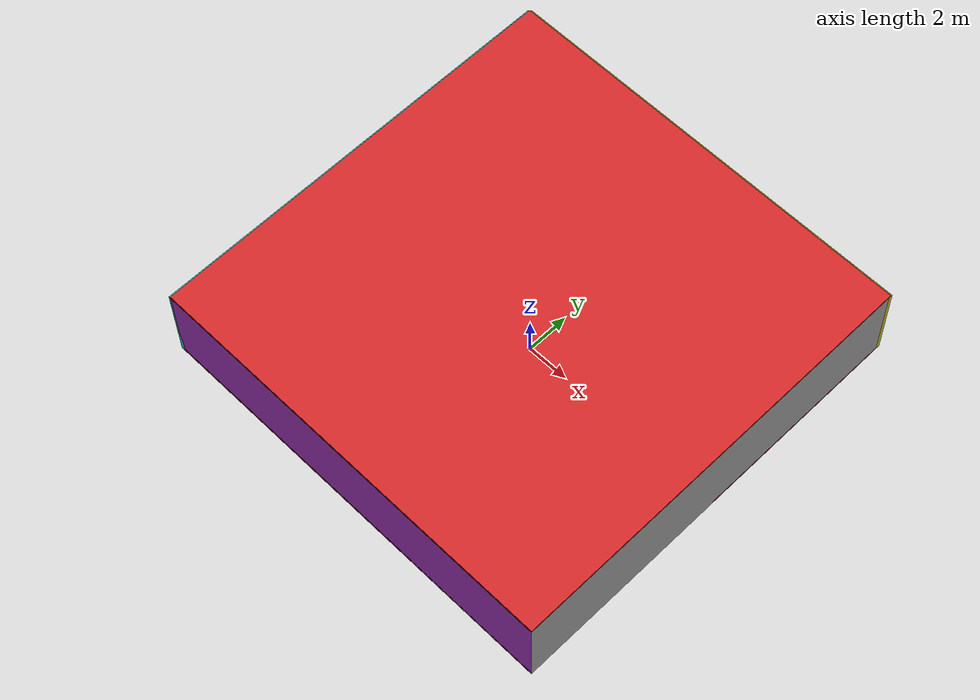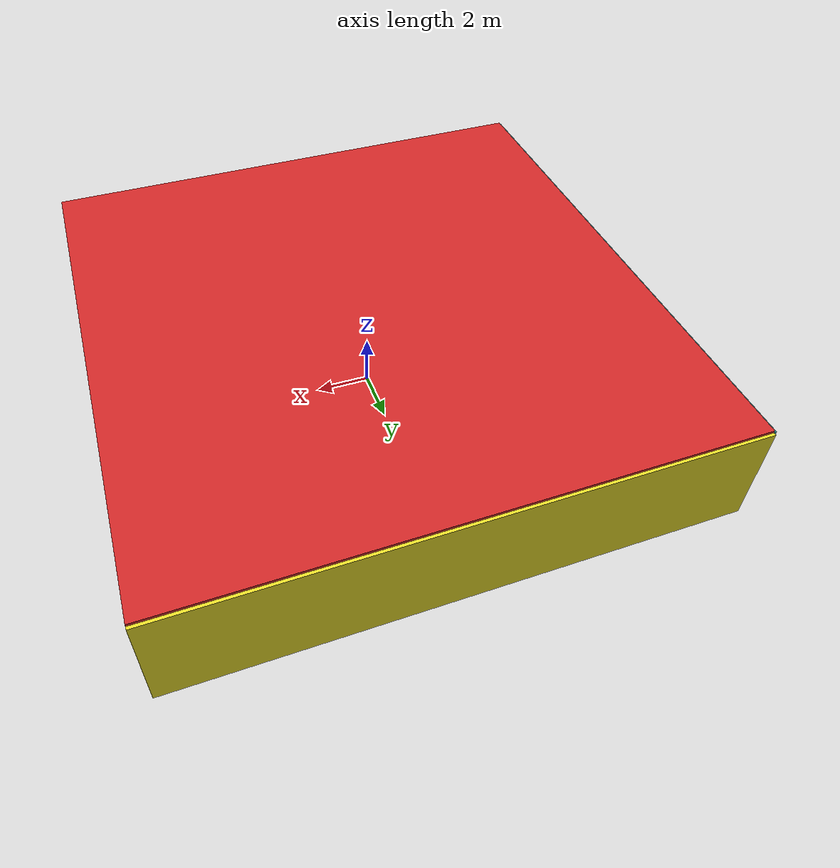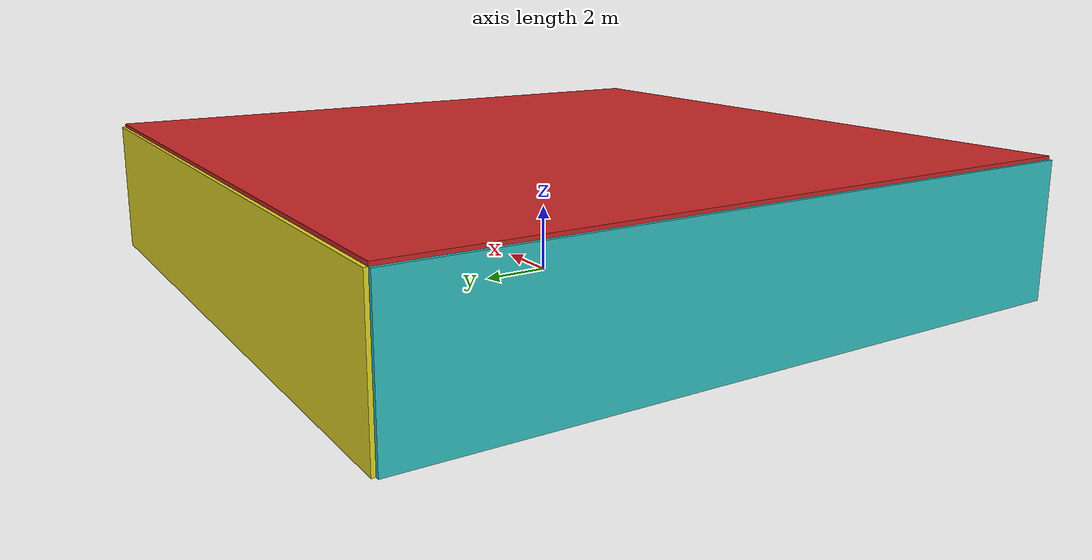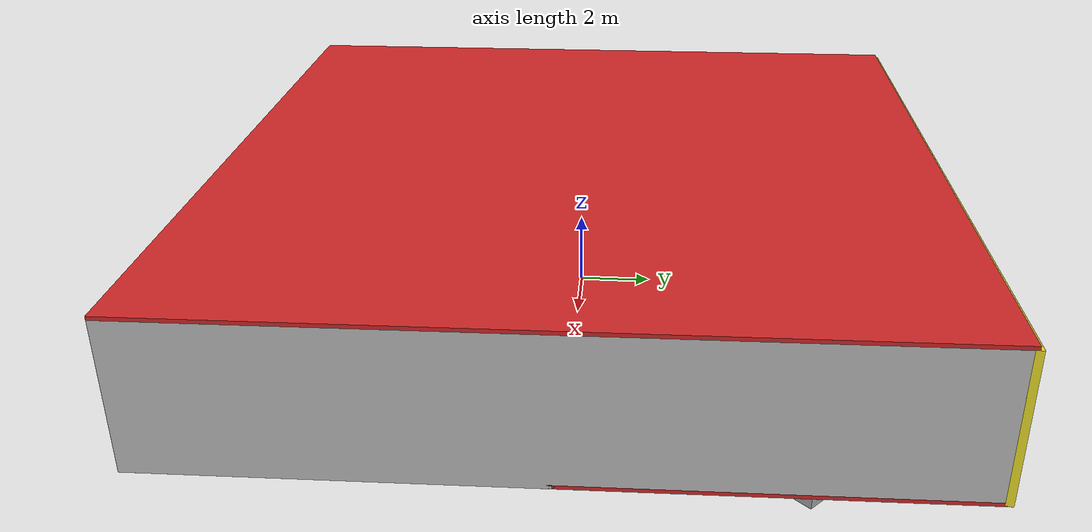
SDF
<sdf version="1.4">
 <world name="default">
  <physics type="ode">
   <max_step_size>0.001</max_step_size>
   <real_time_factor>1</real_time_factor>
   <real_time_update_rate>1000</real_time_update_rate>
   <gravity>0 0 -9.8</gravity>
  </physics>
  <scene><ambient>0.4 0.4 0.4 1</ambient><background>0.7 0.7 0.7 1</background><shadows>1</shadows></scene>
  <model name="Surrounding">
   <static>1</static>
   <link name="Ceiling">
    <collision name="Ceiling_Collision"><geometry><box><size>20 20 0.1</size></box></geometry></collision>
    <visual name="Ceiling_Visual">
     <geometry><box><size>20 20 0.1</size></box></geometry>
     <material>
      <script><uri>file://media/materials/scripts/gazebo.material</uri><name>Gazebo/RedBright</name></script>
     </material>
    </visual>
    <pose>0 0 4.05 0 0 0</pose>
   </link>
   <link name="Wall_South">
    <collision name="Wall_South_Collision">
     <geometry><box><size>20 0 4</size></box></geometry>
     <pose>0 0 2 0 -0 0</pose>
    </collision>
    <visual name="Wall_South_Visual">
     <pose>0 0 2 0 -0 0</pose>
     <geometry><box><size>20 0 4</size></box></geometry>
     <material>
      <script><uri>file://media/materials/scripts/gazebo.material</uri><name>Gazebo/PurpleGlow</name></script>
     </material>
    </visual>
    <velocity_decay><linear>0</linear><angular>0</angular></velocity_decay>
    <pose>0 -10 0 0 -0 0</pose>
   </link>
   <link name="Wall_East">
    <collision name="Wall_21_Collision">
     <geometry><box><size>20 0 4</size></box></geometry>
     <pose>0 0 2 0 -0 0</pose>
    </collision>
    <visual name="Wall_21_Visual">
     <pose>0 0 2 0 -0 0</pose>
     <geometry><box><size>20 0 4</size></box></geometry>
     <material>
      <script><uri>file://media/materials/scripts/gazebo.material</uri><name>Gazebo/LightOn</name></script>
     </material>
    </visual>
    <velocity_decay><linear>0</linear><angular>0</angular></velocity_decay>
    <pose>10 0 0 0 -0 1.5708</pose>
   </link>
   <link name="Wall_North">
    <collision name="Wall_22_Collision">
     <geometry><box><size>20 0.2 4</size></box></geometry>
     <pose>0 0 2 0 -0 0</pose>
    </collision>
    <visual name="Wall_22_Visual">
     <pose>0 0 2 0 -0 0</pose>
     <geometry><box><size>20 0.2 4</size></box></geometry>
     <material>
      <script><uri>file://media/materials/scripts/gazebo.material</uri><name>Gazebo/YellowGlow</name></script>
     </material>
    </visual>
    <velocity_decay><linear>0</linear><angular>0</angular></velocity_decay>
    <pose>0 10 0 0 -0 0</pose>
   </link>
   <link name="Wall_West">
    <collision name="Wall_23_Collision">
     <geometry><box><size>20 0.2 4</size></box></geometry>
     <pose>0 0 2 0 -0 0</pose>
    </collision>
    <visual name="Wall_23_Visual">
     <pose>0 0 2 0 -0 0</pose>
     <geometry><box><size>20 0.2 4</size></box></geometry>
     <material>
      <script>
       <uri>file://media/materials/scripts/gazebo.material</uri>
       <name>Gazebo/TurquoiseGlowOutline</name>
      </script>
     </material>
    </visual>
    <velocity_decay><linear>0</linear><angular>0</angular></velocity_decay>
    <pose>-10 0 0 0 0 -1.5708</pose>
   </link>
   <link name="Ground_link">
    <collision name="collision">
     <pose>0 0 .05 0 -0 0</pose>
     <geometry><box><size>20 20 0.1</size></box></geometry>
    </collision>
    <visual name="visual">
     <pose>0 0 .05 0 -0 0</pose>
     <geometry><box><size>20 20 0.1</size></box></geometry>
     <material>
      <script><uri>file://media/materials/scripts/gazebo.material</uri><name>Gazebo/RedGlow</name></script>
     </material>
    </visual>
   </link>
   <static>1</static>
  </model>
  <spherical_coordinates>
   <surface_model>EARTH_WGS84</surface_model>
   <latitude_deg>0</latitude_deg>
   <longitude_deg>0</longitude_deg>
   <elevation>0</elevation>
   <heading_deg>0</heading_deg>
  </spherical_coordinates>
  <light name="lightball_0" type="diffuse">
   <diffuse>0.8 0.8 0.8 1</diffuse>
   <specular>0.2 0.2 0.2 1</specular>
   <attenuation>
    <range>100</range>
    <constant>0.7</constant>
    <linear>0.01</linear>
    <quadratic>0.001</quadratic>
   </attenuation>
   <direction>-0.5 0.1 -0.9</direction>
   <pose>-0.847245377184 8.49406291951 1.75004403285 0 0 0</pose>
  </light>
  <light name="lightball_1" type="diffuse">
   <diffuse>0.8 0.8 0.8 1</diffuse>
   <specular>0.2 0.2 0.2 1</specular>
   <attenuation>
    <range>100</range>
    <constant>0.7</constant>
    <linear>0.01</linear>
    <quadratic>0.001</quadratic>
   </attenuation>
   <direction>-0.5 0.1 -0.9</direction>
   <pose>-1.00199125722 5.52076003736 3.37994729519 0 0 0</pose>
  </light>
  <light name="lightball_2" type="diffuse">
   <diffuse>0.8 0.8 0.8 1</diffuse>
   <specular>0.2 0.2 0.2 1</specular>
   <attenuation>
    <range>100</range>
    <constant>0.7</constant>
    <linear>0.01</linear>
    <quadratic>0.001</quadratic>
   </attenuation>
   <direction>-0.5 0.1 -0.9</direction>
   <pose>1.55795356591 4.69225973643 1.55578043178 0 0 0</pose>
  </light>
  <light name="lightball_3" type="diffuse">
   <diffuse>0.8 0.8 0.8 1</diffuse>
   <specular>0.2 0.2 0.2 1</specular>
   <attenuation>
    <range>100</range>
    <constant>0.7</constant>
    <linear>0.01</linear>
    <quadratic>0.001</quadratic>
   </attenuation>
   <direction>-0.5 0.1 -0.9</direction>
   <pose>-0.896110713945 -7.51267154418 3.52729586565 0 0 0</pose>
  </light>
  <light name="lightball_4" type="diffuse">
   <diffuse>0.8 0.8 0.8 1</diffuse>
   <specular>0.2 0.2 0.2 1</specular>
   <attenuation>
    <range>100</range>
    <constant>0.7</constant>
    <linear>0.01</linear>
    <quadratic>0.001</quadratic>
   </attenuation>
   <direction>-0.5 0.1 -0.9</direction>
   <pose>-0.0187158167196 -7.5332259043 2.4796746949 0 0 0</pose>
  </light>
  <light name="lightball_5" type="diffuse">
   <diffuse>0.8 0.8 0.8 1</diffuse>
   <specular>0.2 0.2 0.2 1</specular>
   <attenuation>
    <range>100</range>
    <constant>0.7</constant>
    <linear>0.01</linear>
    <quadratic>0.001</quadratic>
   </attenuation>
   <direction>-0.5 0.1 -0.9</direction>
   <pose>-3.65212039253 7.57101885475 1.09091068874 0 0 0</pose>
  </light>
  <light name="lightball_6" type="diffuse">
   <diffuse>0.8 0.8 0.8 1</diffuse>
   <specular>0.2 0.2 0.2 1</specular>
   <attenuation>
    <range>100</range>
    <constant>0.7</constant>
    <linear>0.01</linear>
    <quadratic>0.001</quadratic>
   </attenuation>
   <direction>-0.5 0.1 -0.9</direction>
   <pose>-6.467862559 -5.08113635758 2.98992761878 0 0 0</pose>
  </light>
  <light name="lightball_7" type="diffuse">
   <diffuse>0.8 0.8 0.8 1</diffuse>
   <specular>0.2 0.2 0.2 1</specular>
   <attenuation>
    <range>100</range>
    <constant>0.7</constant>
    <linear>0.01</linear>
    <quadratic>0.001</quadratic>
   </attenuation>
   <direction>-0.5 0.1 -0.9</direction>
   <pose>2.90260342753 -9.97492419881 2.79551790257 0 0 0</pose>
  </light>
  <light name="lightball_8" type="diffuse">
   <diffuse>0.8 0.8 0.8 1</diffuse>
   <specular>0.2 0.2 0.2 1</specular>
   <attenuation>
    <range>100</range>
    <constant>0.7</constant>
    <linear>0.01</linear>
    <quadratic>0.001</quadratic>
   </attenuation>
   <direction>-0.5 0.1 -0.9</direction>
   <pose>-0.897949974462 0.0645866308971 0.874455454338 0 0 0</pose>
  </light>
  <light name="lightball_9" type="diffuse">
   <diffuse>0.8 0.8 0.8 1</diffuse>
   <specular>0.2 0.2 0.2 1</specular>
   <attenuation>
    <range>100</range>
    <constant>0.7</constant>
    <linear>0.01</linear>
    <quadratic>0.001</quadratic>
   </attenuation>
   <direction>-0.5 0.1 -0.9</direction>
   <pose>-8.98306140263 -1.82961807116 2.35412477242 0 0 0</pose>
  </light>
  <light name="lightball_10" type="diffuse">
   <diffuse>0.8 0.8 0.8 1</diffuse>
   <specular>0.2 0.2 0.2 1</specular>
   <attenuation>
    <range>100</range>
    <constant>0.7</constant>
    <linear>0.01</linear>
    <quadratic>0.001</quadratic>
   </attenuation>
   <direction>-0.5 0.1 -0.9</direction>
   <pose>2.80585172588 -5.73561036414 3.21201610697 0 0 0</pose>
  </light>
  <light name="lightball_11" type="diffuse">
   <diffuse>0.8 0.8 0.8 1</diffuse>
   <specular>0.2 0.2 0.2 1</specular>
   <attenuation>
    <range>100</range>
    <constant>0.7</constant>
    <linear>0.01</linear>
    <quadratic>0.001</quadratic>
   </attenuation>
   <direction>-0.5 0.1 -0.9</direction>
   <pose>-2.92045453718 7.92621896682 1.2399241781 0 0 0</pose>
  </light>
  <include>
   <uri>model://robocup_3Dsim_goal</uri>
   <pose>-4.19867629296 -7.65067707046 0 0 0 0.00189067873419</pose>
  </include>
  <include>
   <uri>model://construction_cone</uri>
   <pose>-2.2970183769 -7.16895345865 0 0 0 1.58949852604</pose>
  </include>
  <include>
   <uri>model://robocup_3Dsim_goal</uri>
   <pose>2.06179790514 -3.99622409679 0 0 0 0.747275064292</pose>
  </include>
  <include>
   <uri>model://robocup_3Dsim_goal</uri>
   <pose>3.70092886843 3.81389163186 0 0 0 2.38923691162</pose>
  </include>
  <include>
   <uri>model://textured_shapes</uri>
   <pose>7.67972418534 1.40795582141 0 0 0 0.614273950343</pose>
  </include>
  <include>
   <uri>model://construction_cone</uri>
   <pose>7.87706727163 4.90811522535 0 0 0 1.35033867251</pose>
  </include>
  <include>
   <uri>model://textured_shapes</uri>
   <pose>7.93945730708 6.79566976655 0 0 0 0.804536564921</pose>
  </include>
 </world>
</sdf>

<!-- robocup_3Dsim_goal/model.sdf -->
<sdf version="1.5">
  <model name="robocup_3d_goal">
    <static>true</static>
    <link name="left_post">
      <pose>0 1.05 0.45 0 0 0</pose>
      <collision name="collision">
        <geometry>
          <cylinder>
            <radius>0.05</radius>
            <length>0.9</length>
          </cylinder>
        </geometry>
      </collision>
      <visual name="visual">
        <geometry>
          <cylinder>
            <radius>0.05</radius>
            <length>0.9</length>
          </cylinder>
        </geometry>
        <material>
          <script>
            <uri>file://media/materials/scripts/gazebo.material</uri>
            <name>Gazebo/ZincYellow</name>
          </script>
        </material>
      </visual>
    </link>
    <link name="left_support_horiz_lower">
      <pose>0.30 1.05 0.01 0 0 0</pose>
      <collision name="collision">
        <geometry>
          <box>
            <size>0.50 0.02 0.02</size>
          </box>
        </geometry>
      </collision>
      <visual name="visual">
        <geometry>
          <box>
            <size>0.50 0.02 0.02</size>
          </box>
        </geometry>
        <material>
          <script>
            <uri>file://media/materials/scripts/gazebo.material</uri>
            <name>Gazebo/White</name>
          </script>
        </material>
      </visual>
    </link>
    <link name="left_support_horiz_upper">
      <pose>0.30 1.05 0.79 0 0 0</pose>
      <collision name="collision">
        <geometry>
          <box>
            <size>0.50 0.02 0.02</size>
          </box>
        </geometry>
      </collision>
      <visual name="visual">
        <geometry>
          <box>
            <size>0.50 0.02 0.02</size>
          </box>
        </geometry>
        <material>
          <script>
            <uri>file://media/materials/scripts/gazebo.material</uri>
            <name>Gazebo/White</name>
          </script>
        </material>
      </visual>
    </link>
    <link name="left_support_vertical">
      <pose>0.56 1.05 0.4 0 1.5708 0</pose>
      <collision name="collision">
        <geometry>
          <box>
            <size>0.80 0.02 0.02</size>
          </box>
        </geometry>
      </collision>
      <visual name="visual">
        <geometry>
          <box>
            <size>0.80 0.02 0.02</size>
          </box>
        </geometry>
        <material>
          <script>
            <uri>file://media/materials/scripts/gazebo.material</uri>
            <name>Gazebo/White</name>
          </script>
        </material>
      </visual>
    </link>
    <link name="right_support_horiz_lower">
      <pose>0.30 -1.05 0.01 0 0 0</pose>
      <collision name="collision">
        <geometry>
          <box>
            <size>0.50 0.02 0.02</size>
          </box>
        </geometry>
      </collision>
      <visual name="visual">
        <geometry>
          <box>
            <size>0.50 0.02 0.02</size>
          </box>
        </geometry>
        <material>
          <script>
            <uri>file://media/materials/scripts/gazebo.material</uri>
            <name>Gazebo/White</name>
          </script>
        </material>
      </visual>
    </link>
    <link name="right_support_horiz_upper">
      <pose>0.30 -1.05 0.79 0 0 0</pose>
      <collision name="collision">
        <geometry>
          <box>
            <size>0.50 0.02 0.02</size>
          </box>
        </geometry>
      </collision>
      <visual name="visual">
        <geometry>
          <box>
            <size>0.50 0.02 0.02</size>
          </box>
        </geometry>
        <material>
          <script>
            <uri>file://media/materials/scripts/gazebo.material</uri>
            <name>Gazebo/White</name>
          </script>
        </material>
      </visual>
    </link>
    <link name="right_support_vertical">
      <pose>0.56 -1.05 0.4 0 1.5708 0</pose>
      <collision name="collision">
        <geometry>
          <box>
            <size>0.80 0.02 0.02</size>
          </box>
        </geometry>
      </collision>
      <visual name="visual">
        <geometry>
          <box>
            <size>0.80 0.02 0.02</size>
          </box>
        </geometry>
        <material>
          <script>
            <uri>file://media/materials/scripts/gazebo.material</uri>
            <name>Gazebo/White</name>
          </script>
        </material>
      </visual>
    </link>
    <link name="center_support_horiz_lower">
      <pose>0.56 0 0.01 0 1.5708 0</pose>
      <collision name="collision">
        <geometry>
          <box>
            <size>0.02 2.08 0.02</size>
          </box>
        </geometry>
      </collision>
      <visual name="visual">
        <geometry>
          <box>
            <size>0.02 2.08 0.02</size>
          </box>
        </geometry>
        <material>
          <script>
            <uri>file://media/materials/scripts/gazebo.material</uri>
            <name>Gazebo/White</name>
          </script>
        </material>
      </visual>
    </link>
    <link name="center_support_horiz_upper">
      <pose>0.56 0 0.79 0 1.5708 0</pose>
      <collision name="collision">
        <geometry>
          <box>
            <size>0.02 2.08 0.02</size>
          </box>
        </geometry>
      </collision>
      <visual name="visual">
        <geometry>
          <box>
            <size>0.02 2.08 0.02</size>
          </box>
        </geometry>
        <material>
          <script>
            <uri>file://media/materials/scripts/gazebo.material</uri>
            <name>Gazebo/White</name>
          </script>
        </material>
      </visual>
    </link>
    <link name="right_post">
      <pose>0 -1.05 0.45 0 0 0</pose>
      <collision name="collision">
        <geometry>
          <cylinder>
            <radius>0.05</radius>
            <length>0.9</length>
          </cylinder>
        </geometry>
      </collision>
      <visual name="visual">
        <geometry>
          <cylinder>
            <radius>0.05</radius>
            <length>0.9</length>
          </cylinder>
        </geometry>
        <material>
          <script>
            <uri>file://media/materials/scripts/gazebo.material</uri>
            <name>Gazebo/ZincYellow</name>
          </script>
        </material>
      </visual>
    </link>
    <link name="crossbar">
      <pose>0 0 0.85 1.57 1.57 0</pose>
      <collision name="collision">
        <geometry>
          <cylinder>
            <radius>0.05</radius>
            <length>2.0</length>
          </cylinder>
        </geometry>
      </collision>
      <visual name="visual">
        <geometry>
          <cylinder>
            <radius>0.05</radius>
            <length>2.0</length>
          </cylinder>
        </geometry>
        <material>
          <script>
            <uri>file://media/materials/scripts/gazebo.material</uri>
            <name>Gazebo/ZincYellow</name>
          </script>
        </material>
      </visual>
    </link>
    <link name="center_net">
      <pose>0.56 0 0.40 0 0 0</pose>
      <collision name="collision">
        <geometry>
          <box>
            <size>0.01 2.1 0.80</size>
          </box>
        </geometry>
      </collision>
      <visual name="visual">
        <geometry>
          <box>
            <size>0.01 2.1 0.80</size>
          </box>
        </geometry>
        <material>
          <script>
            <uri>model://../model_source/models/robocup09_spl_field/materials/scripts/</uri>
            <uri>model://../model_source/models/robocup09_spl_field/materials/textures/</uri>
            <name>RoboCup/Net</name>
          </script>
        </material>
      </visual>
    </link>
    <link name="left_net">
      <pose>0.30 1.05 0.40 0 0 0</pose>
      <collision name="collision">
        <geometry>
          <box>
            <size>0.50 0.01 0.76</size>
          </box>
        </geometry>
      </collision>
      <visual name="visual">
        <geometry>
          <box>
            <size>0.50 0.01 0.76</size>
          </box>
        </geometry>
        <material>
          <script>
            <uri>model://../model_source/models/robocup09_spl_field/materials/scripts/</uri>
            <uri>model://../model_source/models/robocup09_spl_field/materials/textures/</uri>
            <name>RoboCup/Net</name>
          </script>
        </material>
      </visual>
    </link>
    <link name="right_net">
      <pose>0.30 -1.05 0.40 0 0 0</pose>
      <collision name="collision">
        <geometry>
          <box>
            <size>0.50 0.01 0.76</size>
          </box>
        </geometry>
      </collision>
      <visual name="visual">
        <geometry>
          <box>
            <size>0.50 0.01 0.76</size>
          </box>
        </geometry>
        <material>
          <script>
            <uri>model://../model_source/models/robocup09_spl_field/materials/scripts/</uri>
            <uri>model://../model_source/models/robocup09_spl_field/materials/textures/</uri>
            <name>RoboCup/Net</name>
          </script>
        </material>
      </visual>
    </link>
  </model>
</sdf>

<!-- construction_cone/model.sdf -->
<sdf version="1.5">
  <model name="Construction Cone">
    <link name="link">
      <collision name="collision">
        <geometry>
          <mesh>
            <scale>10 10 10</scale>
            <uri>file://isr-testbed/construction_cone/meshes/construction_cone.dae</uri>
          </mesh>
        </geometry>
      </collision>
      <visual name="visual">
        <geometry>
          <mesh>
            <scale>10 10 10</scale>
            <uri>file://isr-testbed/construction_cone/meshes/construction_cone.dae</uri>
          </mesh>
        </geometry>
      </visual>
    </link>
  </model>
</sdf>

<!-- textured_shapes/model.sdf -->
<sdf version="1.6">
  <model name="textured_shapes">
    <pose>0 0 0.5 0 0 0</pose>
    <link name="box">
      <pose>0 -1.5 0 0 0 0</pose>
      <collision name="collision">
        <geometry>
          <box>
            <size>1 1 1</size>
          </box>
        </geometry>
      </collision>
      <visual name="visual">
        <geometry>
          <box>
            <size>1 1 1</size>
          </box>
        </geometry>
        <material>
          <script>
            <uri>model://../model_source/models/textured_shapes/materials/scripts</uri>
            <uri>model://../model_source/models/textured_shapes/materials/textures</uri>
            <name>TexturedShape/Squares</name>
          </script>
        </material>
      </visual>
    </link>
    <link name="sphere">
      <collision name="collision">
        <geometry>
          <sphere>
            <radius>0.5</radius>
          </sphere>
        </geometry>
      </collision>
      <visual name="visual">
        <geometry>
          <sphere>
            <radius>0.5</radius>
          </sphere>
        </geometry>
        <material>
          <script>
            <uri>model://../model_source/models/textured_shapes/materials/scripts</uri>
            <uri>model://../model_source/models/textured_shapes/materials/textures</uri>
            <name>TexturedShape/Squares</name>
          </script>
        </material>
      </visual>
    </link>
    <link name="cylinder">
      <pose>0 1.5 0 0 0 0</pose>
      <collision name="collision">
        <geometry>
          <cylinder>
            <radius>0.5</radius>
            <length>1</length>
          </cylinder>
        </geometry>
      </collision>
      <visual name="visual">
        <geometry>
          <cylinder>
            <radius>0.5</radius>
            <length>1</length>
          </cylinder>
        </geometry>
        <material>
          <script>
            <uri>model://../model_source/models/textured_shapes/materials/scripts</uri>
            <uri>model://../model_source/models/textured_shapes/materials/textures</uri>
            <name>TexturedShape/Squares</name>
          </script>
        </material>
      </visual>
    </link>
  </model>
</sdf>
